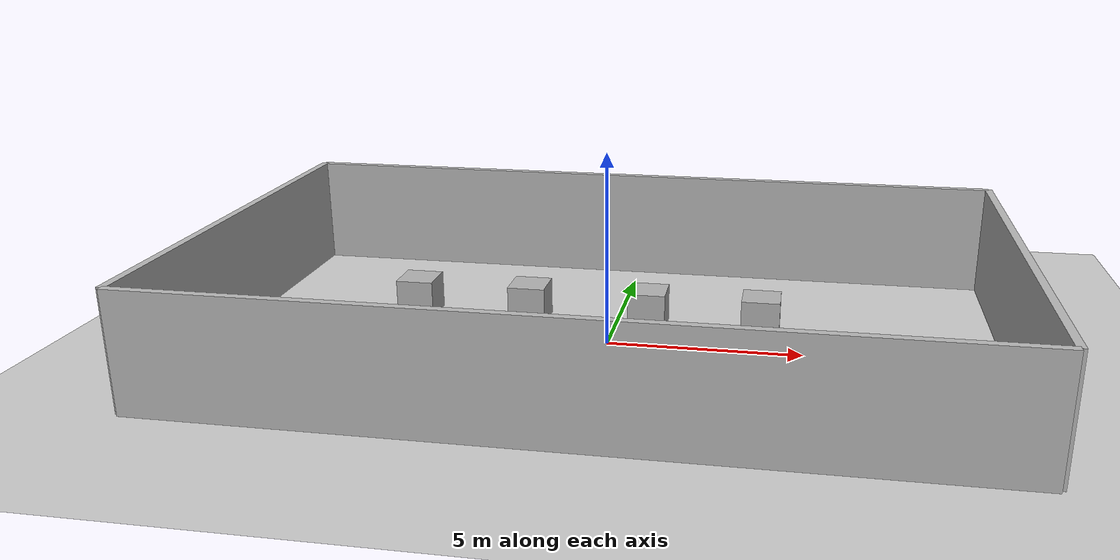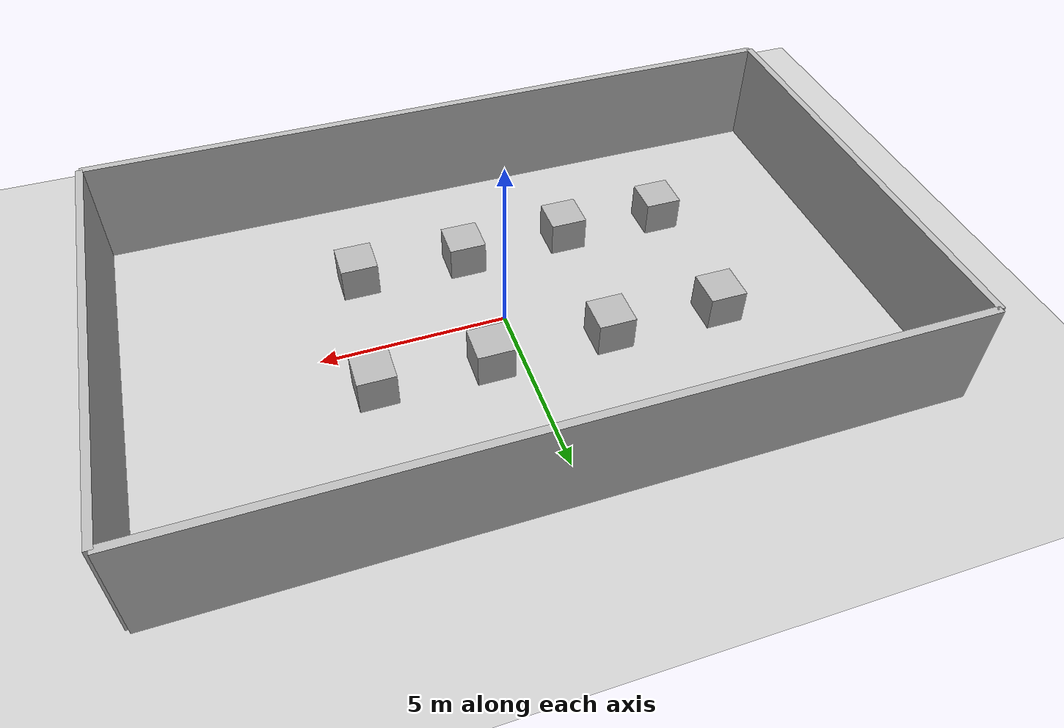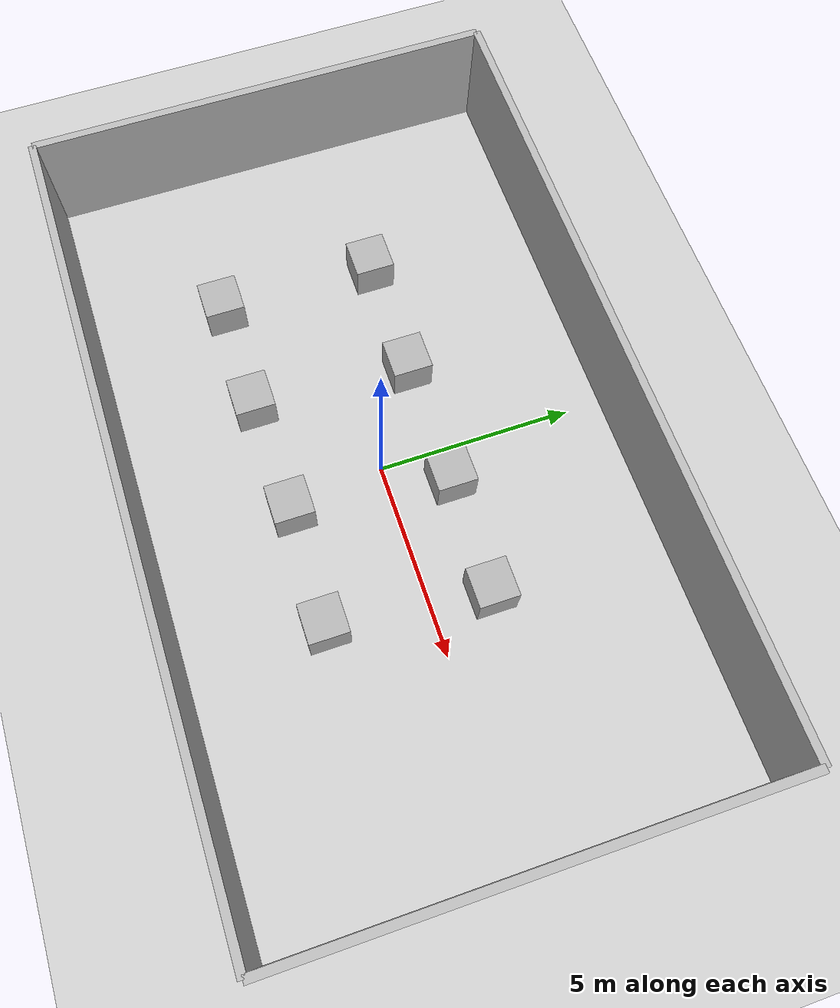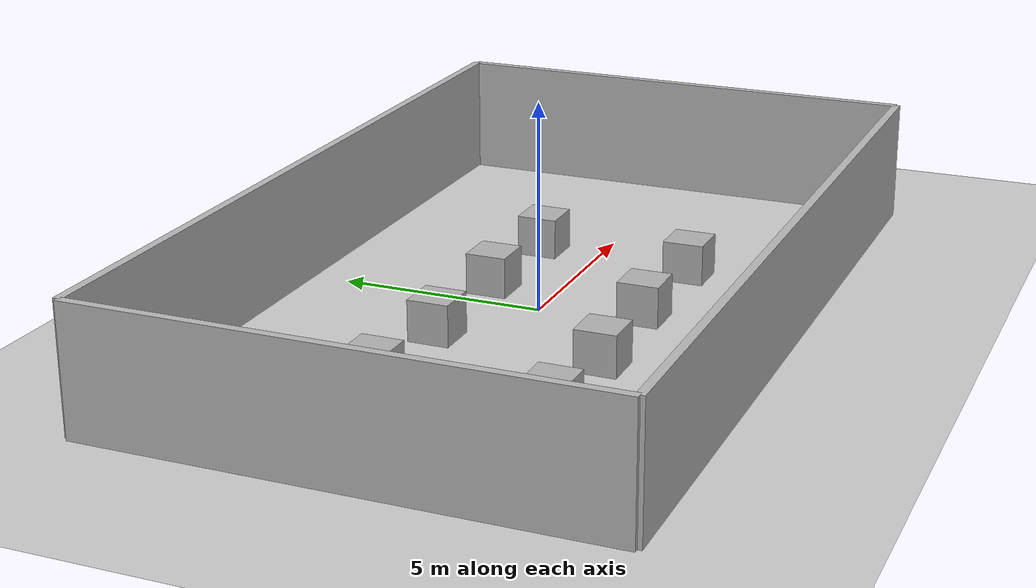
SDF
<sdf version='1.10'>
  <world name='warehouse'>
    <physics name='1ms' type='ignored'>
      <max_step_size>0.001</max_step_size>
      <real_time_factor>1</real_time_factor>
      <real_time_update_rate>1000</real_time_update_rate>
    </physics>
    <plugin name='gz::sim::systems::Physics' filename='gz-sim-physics-system' />
    <plugin name='gz::sim::systems::UserCommands' filename='gz-sim-user-commands-system' />
    <plugin name='gz::sim::systems::SceneBroadcaster' filename='gz-sim-scene-broadcaster-system' />
    <plugin name='gz::sim::systems::Contact' filename='gz-sim-contact-system' />
    <gravity>0 0 -9.8000000000000007</gravity>
    <magnetic_field>5.5644999999999998e-06 2.2875799999999999e-05 -4.2388400000000002e-05</magnetic_field>
    <atmosphere type='adiabatic' />
    <scene>
      <ambient>0.400000006 0.400000006 0.400000006 1</ambient>
      <background>0.699999988 0.699999988 0.699999988 1</background>
      <shadows>true</shadows>
    </scene>
    <model name='ground_plane'>
      <static>true</static>
      <link name='link'>
        <collision name='collision'>
          <geometry>
            <plane>
              <normal>0 0 1</normal>
              <size>100 100</size>
            </plane>
          </geometry>
          <surface>
            <friction>
              <ode />
            </friction>
            <bounce />
            <contact />
          </surface>
        </collision>
        <visual name='visual'>
          <geometry>
            <plane>
              <normal>0 0 1</normal>
              <size>100 100</size>
            </plane>
          </geometry>
          <material>
            <ambient>0.800000012 0.800000012 0.800000012 1</ambient>
            <diffuse>0.800000012 0.800000012 0.800000012 1</diffuse>
            <specular>0.800000012 0.800000012 0.800000012 1</specular>
          </material>
        </visual>
        <pose>0 0 0 0 0 0</pose>
        <inertial>
          <pose>0 0 0 0 0 0</pose>
          <mass>1</mass>
          <inertia>
            <ixx>1</ixx>
            <ixy>0</ixy>
            <ixz>0</ixz>
            <iyy>1</iyy>
            <iyz>0</iyz>
            <izz>1</izz>
          </inertia>
        </inertial>
        <enable_wind>false</enable_wind>
      </link>
      <pose>0 0 0 0 0 0</pose>
      <self_collide>false</self_collide>
    </model>
    <model name='north_wall'>
      <static>true</static>
      <pose>0 6 1.5 0 0 0</pose>
      <link name='link'>
        <collision name='collision'>
          <geometry>
            <box>
              <size>20 0.20000000000000001 3</size>
            </box>
          </geometry>
          <surface>
            <friction>
              <ode />
            </friction>
            <bounce />
            <contact />
          </surface>
        </collision>
        <visual name='visual'>
          <geometry>
            <box>
              <size>20 0.20000000000000001 3</size>
            </box>
          </geometry>
        </visual>
        <pose>0 0 0 0 0 0</pose>
        <inertial>
          <pose>0 0 0 0 0 0</pose>
          <mass>1</mass>
          <inertia>
            <ixx>1</ixx>
            <ixy>0</ixy>
            <ixz>0</ixz>
            <iyy>1</iyy>
            <iyz>0</iyz>
            <izz>1</izz>
          </inertia>
        </inertial>
        <enable_wind>false</enable_wind>
      </link>
      <self_collide>false</self_collide>
    </model>
    <model name='south_wall'>
      <static>true</static>
      <pose>0 -6 1.5 0 0 0</pose>
      <link name='link'>
        <collision name='collision'>
          <geometry>
            <box>
              <size>20 0.20000000000000001 3</size>
            </box>
          </geometry>
          <surface>
            <friction>
              <ode />
            </friction>
            <bounce />
            <contact />
          </surface>
        </collision>
        <visual name='visual'>
          <geometry>
            <box>
              <size>20 0.20000000000000001 3</size>
            </box>
          </geometry>
        </visual>
        <pose>0 0 0 0 0 0</pose>
        <inertial>
          <pose>0 0 0 0 0 0</pose>
          <mass>1</mass>
          <inertia>
            <ixx>1</ixx>
            <ixy>0</ixy>
            <ixz>0</ixz>
            <iyy>1</iyy>
            <iyz>0</iyz>
            <izz>1</izz>
          </inertia>
        </inertial>
        <enable_wind>false</enable_wind>
      </link>
      <self_collide>false</self_collide>
    </model>
    <model name='east_wall'>
      <static>true</static>
      <pose>10 0 1.5 0 0 0</pose>
      <link name='link'>
        <collision name='collision'>
          <geometry>
            <box>
              <size>0.20000000000000001 12 3</size>
            </box>
          </geometry>
          <surface>
            <friction>
              <ode />
            </friction>
            <bounce />
            <contact />
          </surface>
        </collision>
        <visual name='visual'>
          <geometry>
            <box>
              <size>0.20000000000000001 12 3</size>
            </box>
          </geometry>
        </visual>
        <pose>0 0 0 0 0 0</pose>
        <inertial>
          <pose>0 0 0 0 0 0</pose>
          <mass>1</mass>
          <inertia>
            <ixx>1</ixx>
            <ixy>0</ixy>
            <ixz>0</ixz>
            <iyy>1</iyy>
            <iyz>0</iyz>
            <izz>1</izz>
          </inertia>
        </inertial>
        <enable_wind>false</enable_wind>
      </link>
      <self_collide>false</self_collide>
    </model>
    <model name='west_wall'>
      <static>true</static>
      <pose>-10 0 1.5 0 0 0</pose>
      <link name='link'>
        <collision name='collision'>
          <geometry>
            <box>
              <size>0.20000000000000001 12 3</size>
            </box>
          </geometry>
          <surface>
            <friction>
              <ode />
            </friction>
            <bounce />
            <contact />
          </surface>
        </collision>
        <visual name='visual'>
          <geometry>
            <box>
              <size>0.20000000000000001 12 3</size>
            </box>
          </geometry>
        </visual>
        <pose>0 0 0 0 0 0</pose>
        <inertial>
          <pose>0 0 0 0 0 0</pose>
          <mass>1</mass>
          <inertia>
            <ixx>1</ixx>
            <ixy>0</ixy>
            <ixz>0</ixz>
            <iyy>1</iyy>
            <iyz>0</iyz>
            <izz>1</izz>
          </inertia>
        </inertial>
        <enable_wind>false</enable_wind>
      </link>
      <self_collide>false</self_collide>
    </model>
    <model name='box'>
      <pose>3.8641759502933866 1.4489546720315793 0.5 0 0 0</pose>
      <link name='box_link'>
        <inertial>
          <inertia>
            <ixx>0.16666</ixx>
            <ixy>0</ixy>
            <ixz>0</ixz>
            <iyy>0.16666</iyy>
            <iyz>0</iyz>
            <izz>0.16666</izz>
          </inertia>
          <mass>1</mass>
          <pose>0 0 0 0 0 0</pose>
        </inertial>
        <collision name='box_collision'>
          <geometry>
            <box>
              <size>1 1 1</size>
            </box>
          </geometry>
          <surface>
            <friction>
              <ode />
            </friction>
            <bounce />
            <contact />
          </surface>
        </collision>
        <visual name='box_visual'>
          <geometry>
            <box>
              <size>1 1 1</size>
            </box>
          </geometry>
          <material>
            <ambient>0.300000012 0.300000012 0.300000012 1</ambient>
            <diffuse>0.699999988 0.699999988 0.699999988 1</diffuse>
            <specular>1 1 1 1</specular>
          </material>
        </visual>
        <pose>0 0 0 0 0 0</pose>
        <enable_wind>false</enable_wind>
      </link>
      <static>false</static>
      <self_collide>false</self_collide>
    </model>
    <model name='box_0'>
      <pose>0.86126678549451796 1.5160756671389966 0.5 0 0 0</pose>
      <link name='box_link'>
        <inertial>
          <inertia>
            <ixx>0.16666</ixx>
            <ixy>0</ixy>
            <ixz>0</ixz>
            <iyy>0.16666</iyy>
            <iyz>0</iyz>
            <izz>0.16666</izz>
          </inertia>
          <mass>1</mass>
          <pose>0 0 0 0 0 0</pose>
        </inertial>
        <collision name='box_collision'>
          <geometry>
            <box>
              <size>1 1 1</size>
            </box>
          </geometry>
          <surface>
            <friction>
              <ode />
            </friction>
            <bounce />
            <contact />
          </surface>
        </collision>
        <visual name='box_visual'>
          <geometry>
            <box>
              <size>1 1 1</size>
            </box>
          </geometry>
          <material>
            <ambient>0.300000012 0.300000012 0.300000012 1</ambient>
            <diffuse>0.699999988 0.699999988 0.699999988 1</diffuse>
            <specular>1 1 1 1</specular>
          </material>
        </visual>
        <pose>0 0 0 0 0 0</pose>
        <enable_wind>false</enable_wind>
      </link>
      <static>false</static>
      <self_collide>false</self_collide>
    </model>
    <model name='box_1'>
      <pose>-2.3817629161500604 1.4894139383510347 0.5 0 0 0</pose>
      <link name='box_link'>
        <inertial>
          <inertia>
            <ixx>0.16666</ixx>
            <ixy>0</ixy>
            <ixz>0</ixz>
            <iyy>0.16666</iyy>
            <iyz>0</iyz>
            <izz>0.16666</izz>
          </inertia>
          <mass>1</mass>
          <pose>0 0 0 0 0 0</pose>
        </inertial>
        <collision name='box_collision'>
          <geometry>
            <box>
              <size>1 1 1</size>
            </box>
          </geometry>
          <surface>
            <friction>
              <ode />
            </friction>
            <bounce />
            <contact />
          </surface>
        </collision>
        <visual name='box_visual'>
          <geometry>
            <box>
              <size>1 1 1</size>
            </box>
          </geometry>
          <material>
            <ambient>0.300000012 0.300000012 0.300000012 1</ambient>
            <diffuse>0.699999988 0.699999988 0.699999988 1</diffuse>
            <specular>1 1 1 1</specular>
          </material>
        </visual>
        <pose>0 0 0 0 0 0</pose>
        <enable_wind>false</enable_wind>
      </link>
      <static>false</static>
      <self_collide>false</self_collide>
    </model>
    <model name='box_2'>
      <pose>-5.5031891633712195 1.5084528709151628 0.5 0 0 0</pose>
      <link name='box_link'>
        <inertial>
          <inertia>
            <ixx>0.16666</ixx>
            <ixy>0</ixy>
            <ixz>0</ixz>
            <iyy>0.16666</iyy>
            <iyz>0</iyz>
            <izz>0.16666</izz>
          </inertia>
          <mass>1</mass>
          <pose>0 0 0 0 0 0</pose>
        </inertial>
        <collision name='box_collision'>
          <geometry>
            <box>
              <size>1 1 1</size>
            </box>
          </geometry>
          <surface>
            <friction>
              <ode />
            </friction>
            <bounce />
            <contact />
          </surface>
        </collision>
        <visual name='box_visual'>
          <geometry>
            <box>
              <size>1 1 1</size>
            </box>
          </geometry>
          <material>
            <ambient>0.300000012 0.300000012 0.300000012 1</ambient>
            <diffuse>0.699999988 0.699999988 0.699999988 1</diffuse>
            <specular>1 1 1 1</specular>
          </material>
        </visual>
        <pose>0 0 0 0 0 0</pose>
        <enable_wind>false</enable_wind>
      </link>
      <static>false</static>
      <self_collide>false</self_collide>
    </model>
    <model name='box_3'>
      <pose>3.4455409713461806 -2.5238934187367823 0.5 0 0 0</pose>
      <link name='box_link'>
        <inertial>
          <inertia>
            <ixx>0.16666</ixx>
            <ixy>0</ixy>
            <ixz>0</ixz>
            <iyy>0.16666</iyy>
            <iyz>0</iyz>
            <izz>0.16666</izz>
          </inertia>
          <mass>1</mass>
          <pose>0 0 0 0 0 0</pose>
        </inertial>
        <collision name='box_collision'>
          <geometry>
            <box>
              <size>1 1 1</size>
            </box>
          </geometry>
          <surface>
            <friction>
              <ode />
            </friction>
            <bounce />
            <contact />
          </surface>
        </collision>
        <visual name='box_visual'>
          <geometry>
            <box>
              <size>1 1 1</size>
            </box>
          </geometry>
          <material>
            <ambient>0.300000012 0.300000012 0.300000012 1</ambient>
            <diffuse>0.699999988 0.699999988 0.699999988 1</diffuse>
            <specular>1 1 1 1</specular>
          </material>
        </visual>
        <pose>0 0 0 0 0 0</pose>
        <enable_wind>false</enable_wind>
      </link>
      <static>false</static>
      <self_collide>false</self_collide>
    </model>
    <model name='box_4'>
      <pose>0.42860727101623297 -2.4435388211199607 0.5 0 0 0</pose>
      <link name='box_link'>
        <inertial>
          <inertia>
            <ixx>0.16666</ixx>
            <ixy>0</ixy>
            <ixz>0</ixz>
            <iyy>0.16666</iyy>
            <iyz>0</iyz>
            <izz>0.16666</izz>
          </inertia>
          <mass>1</mass>
          <pose>0 0 0 0 0 0</pose>
        </inertial>
        <collision name='box_collision'>
          <geometry>
            <box>
              <size>1 1 1</size>
            </box>
          </geometry>
          <surface>
            <friction>
              <ode />
            </friction>
            <bounce />
            <contact />
          </surface>
        </collision>
        <visual name='box_visual'>
          <geometry>
            <box>
              <size>1 1 1</size>
            </box>
          </geometry>
          <material>
            <ambient>0.300000012 0.300000012 0.300000012 1</ambient>
            <diffuse>0.699999988 0.699999988 0.699999988 1</diffuse>
            <specular>1 1 1 1</specular>
          </material>
        </visual>
        <pose>0 0 0 0 0 0</pose>
        <enable_wind>false</enable_wind>
      </link>
      <static>false</static>
      <self_collide>false</self_collide>
    </model>
    <model name='box_5'>
      <pose>-2.5860109146727845 -2.5579878077094631 0.5 0 0 0</pose>
      <link name='box_link'>
        <inertial>
          <inertia>
            <ixx>0.16666</ixx>
            <ixy>0</ixy>
            <ixz>0</ixz>
            <iyy>0.16666</iyy>
            <iyz>0</iyz>
            <izz>0.16666</izz>
          </inertia>
          <mass>1</mass>
          <pose>0 0 0 0 0 0</pose>
        </inertial>
        <collision name='box_collision'>
          <geometry>
            <box>
              <size>1 1 1</size>
            </box>
          </geometry>
          <surface>
            <friction>
              <ode />
            </friction>
            <bounce />
            <contact />
          </surface>
        </collision>
        <visual name='box_visual'>
          <geometry>
            <box>
              <size>1 1 1</size>
            </box>
          </geometry>
          <material>
            <ambient>0.300000012 0.300000012 0.300000012 1</ambient>
            <diffuse>0.699999988 0.699999988 0.699999988 1</diffuse>
            <specular>1 1 1 1</specular>
          </material>
        </visual>
        <pose>0 0 0 0 0 0</pose>
        <enable_wind>false</enable_wind>
      </link>
      <static>false</static>
      <self_collide>false</self_collide>
    </model>
    <model name='box_6'>
      <pose>-5.4952273461005072 -2.5491476561209145 0.5 0 0 0</pose>
      <link name='box_link'>
        <inertial>
          <inertia>
            <ixx>0.16666</ixx>
            <ixy>0</ixy>
            <ixz>0</ixz>
            <iyy>0.16666</iyy>
            <iyz>0</iyz>
            <izz>0.16666</izz>
          </inertia>
          <mass>1</mass>
          <pose>0 0 0 0 0 0</pose>
        </inertial>
        <collision name='box_collision'>
          <geometry>
            <box>
              <size>1 1 1</size>
            </box>
          </geometry>
          <surface>
            <friction>
              <ode />
            </friction>
            <bounce />
            <contact />
          </surface>
        </collision>
        <visual name='box_visual'>
          <geometry>
            <box>
              <size>1 1 1</size>
            </box>
          </geometry>
          <material>
            <ambient>0.300000012 0.300000012 0.300000012 1</ambient>
            <diffuse>0.699999988 0.699999988 0.699999988 1</diffuse>
            <specular>1 1 1 1</specular>
          </material>
        </visual>
        <pose>0 0 0 0 0 0</pose>
        <enable_wind>false</enable_wind>
      </link>
      <static>false</static>
      <self_collide>false</self_collide>
    </model>
    <light name='sun' type='directional'>
      <pose>0 0 10 0 0 0</pose>
      <cast_shadows>true</cast_shadows>
      <intensity>1</intensity>
      <direction>-0.5 0.10000000000000001 -0.90000000000000002</direction>
      <diffuse>0.800000012 0.800000012 0.800000012 1</diffuse>
      <specular>0.200000003 0.200000003 0.200000003 1</specular>
      <attenuation>
        <range>1000</range>
        <linear>0.01</linear>
        <constant>0.90000000000000002</constant>
        <quadratic>0.001</quadratic>
      </attenuation>
      <spot>
        <inner_angle>0</inner_angle>
        <outer_angle>0</outer_angle>
        <falloff>0</falloff>
      </spot>
    </light>
    <plugin
      filename="gz-sim-sensors-system"
      name="gz::sim::systems::Sensors">
      <render_engine>ogre2</render_engine>
    </plugin>
  </world>
</sdf>
